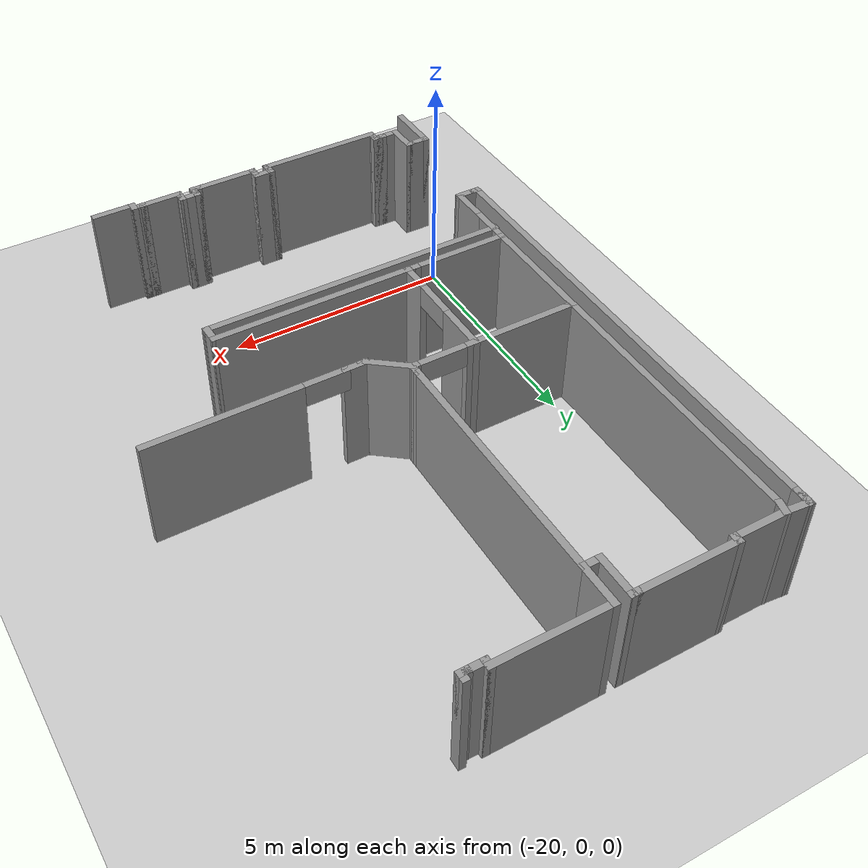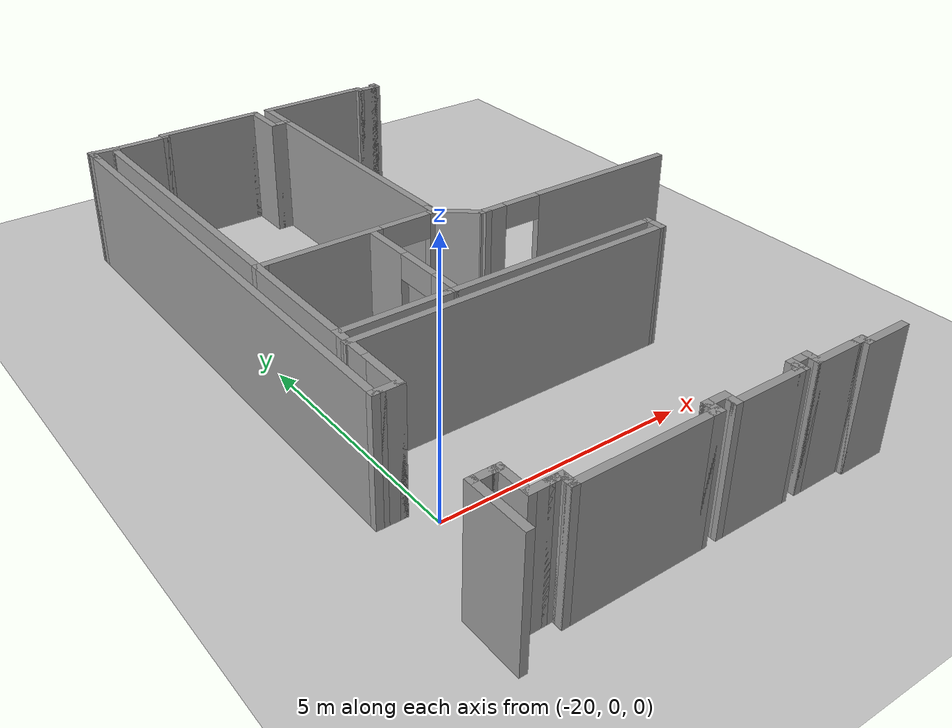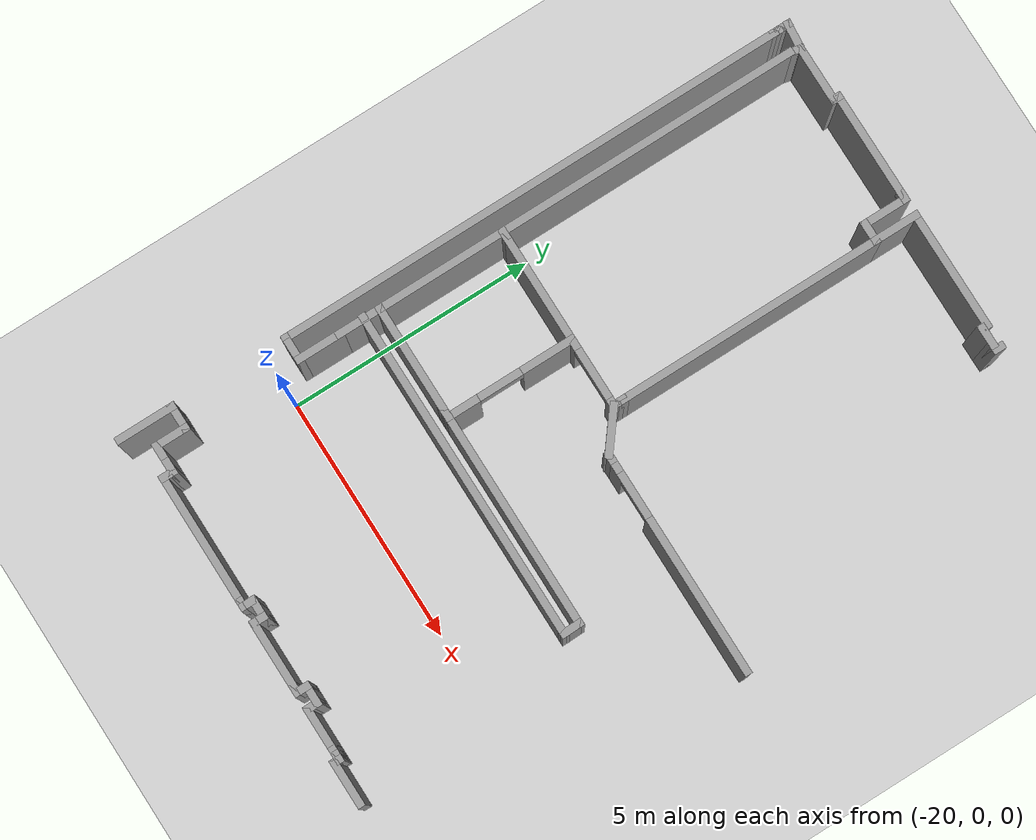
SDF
<sdf version="1.6">
 <world name="default">
  <model name="ground_plane">
   <static>1</static>
   <link name="link">
    <collision name="collision">
     <geometry><plane><normal>0 0 1</normal><size>100 100</size></plane></geometry>
     <surface><friction><ode><mu>100</mu><mu2>50</mu2></ode></friction></surface>
    </collision>
    <visual name="visual">
     <cast_shadows>0</cast_shadows>
     <geometry><plane><normal>0 0 1</normal><size>100 100</size></plane></geometry>
     <material>
      <script><uri>file://media/materials/scripts/gazebo.material</uri><name>Gazebo/Grey</name></script>
     </material>
    </visual>
   </link>
  </model>
  <model name="office_full">
   <pose>-0.417572 -0.704362 0 0 -0 0</pose>
   <link name="Wall_101">
    <collision name="Wall_101_Collision">
     <geometry><box><size>4.5 0.15 2.5</size></box></geometry>
     <pose>0 0 1.25 0 -0 0</pose>
    </collision>
    <visual name="Wall_101_Visual">
     <pose>0 0 1.25 0 -0 0</pose>
     <geometry><box><size>4.5 0.15 2.5</size></box></geometry>
     <material>
      <script><uri>file://media/materials/scripts/gazebo.material</uri><name>Gazebo/Grey</name></script>
      <ambient>1 1 1 1</ambient>
     </material>
    </visual>
    <pose>-15.4793 2.88121 0 0 -0 0</pose>
   </link>
   <link name="Wall_108">
    <collision name="Wall_108_Collision">
     <geometry><box><size>0.15 0.15 2.5</size></box></geometry>
     <pose>0 0 1.25 0 -0 0</pose>
    </collision>
    <visual name="Wall_108_Visual">
     <pose>0 0 1.25 0 -0 0</pose>
     <geometry><box><size>0.15 0.15 2.5</size></box></geometry>
     <material>
      <script><uri>file://media/materials/scripts/gazebo.material</uri><name>Gazebo/Grey</name></script>
      <ambient>1 1 1 1</ambient>
     </material>
    </visual>
    <pose>-19.9811 2.5471 0 0 -0 0</pose>
   </link>
   <link name="Wall_114">
    <collision name="Wall_114_Collision">
     <geometry><box><size>1 0.15 2.5</size></box></geometry>
     <pose>0 0 1.25 0 -0 0</pose>
    </collision>
    <visual name="Wall_114_Visual">
     <pose>0 0 1.25 0 -0 0</pose>
     <geometry><box><size>1 0.15 2.5</size></box></geometry>
     <material>
      <script><uri>file://media/materials/scripts/gazebo.material</uri><name>Gazebo/Grey</name></script>
      <ambient>1 1 1 1</ambient>
     </material>
    </visual>
    <pose>-19.9543 2.45621 0 0 0 -1.5708</pose>
   </link>
   <link name="Wall_117">
    <collision name="Wall_117_Collision">
     <geometry><box><size>6.83579 0.15 2.5</size></box></geometry>
     <pose>0 0 1.25 0 -0 0</pose>
    </collision>
    <visual name="Wall_117_Visual">
     <pose>0 0 1.25 0 -0 0</pose>
     <geometry><box><size>6.83579 0.15 2.5</size></box></geometry>
     <material>
      <script><uri>file://media/materials/scripts/gazebo.material</uri><name>Gazebo/Grey</name></script>
      <ambient>1 1 1 1</ambient>
     </material>
    </visual>
    <pose>-16.6382 2.55421 0 0 0 -3.14032</pose>
   </link>
   <link name="Wall_140">
    <collision name="Wall_140_Collision">
     <geometry><box><size>0.472867 0.15 2.5</size></box></geometry>
     <pose>0 0 1.25 0 -0 0</pose>
    </collision>
    <visual name="Wall_140_Visual">
     <pose>0 0 1.25 0 -0 0</pose>
     <geometry><box><size>0.472867 0.15 2.5</size></box></geometry>
     <material>
      <script><uri>file://media/materials/scripts/gazebo.material</uri><name>Gazebo/Grey</name></script>
      <ambient>1 1 1 1</ambient>
     </material>
    </visual>
    <pose>-13.2998 2.71984 0 0 0 -1.54281</pose>
   </link>
   <link name="Wall_143">
    <collision name="Wall_143_Collision">
     <geometry><box><size>1 0.15 2.5</size></box></geometry>
     <pose>0 0 1.25 0 -0 0</pose>
    </collision>
    <visual name="Wall_143_Visual">
     <pose>0 0 1.25 0 -0 0</pose>
     <geometry><box><size>1 0.15 2.5</size></box></geometry>
     <material>
      <script><uri>file://media/materials/scripts/gazebo.material</uri><name>Gazebo/Grey</name></script>
      <ambient>1 1 1 1</ambient>
     </material>
    </visual>
    <pose>-19.9543 1.60621 0 0 0 -1.5708</pose>
   </link>
   <link name="Wall_144">
    <collision name="Wall_144_Collision">
     <geometry><box><size>0.5 0.15 2.5</size></box></geometry>
     <pose>0 0 1.25 0 -0 0</pose>
    </collision>
    <visual name="Wall_144_Visual">
     <pose>0 0 1.25 0 -0 0</pose>
     <geometry><box><size>0.5 0.15 2.5</size></box></geometry>
     <material>
      <script><uri>file://media/materials/scripts/gazebo.material</uri><name>Gazebo/Grey</name></script>
      <ambient>1 1 1 1</ambient>
     </material>
    </visual>
    <pose>-20.1293 1.18121 0 0 -0 3.14159</pose>
   </link>
   <link name="Wall_145">
    <collision name="Wall_145_Collision">
     <geometry><box><size>0.25 0.15 2.5</size></box></geometry>
     <pose>0 0 1.25 0 -0 0</pose>
    </collision>
    <visual name="Wall_145_Visual">
     <pose>0 0 1.25 0 -0 0</pose>
     <geometry><box><size>0.25 0.15 2.5</size></box></geometry>
     <material>
      <script><uri>file://media/materials/scripts/gazebo.material</uri><name>Gazebo/Grey</name></script>
      <ambient>1 1 1 1</ambient>
     </material>
    </visual>
    <pose>-20.3543 1.18121 0 0 -0 3.14159</pose>
   </link>
   <link name="Wall_146">
    <collision name="Wall_146_Collision">
     <geometry><box><size>10.5 0.15 2.5</size></box></geometry>
     <pose>0 0 1.25 0 -0 0</pose>
    </collision>
    <visual name="Wall_146_Visual">
     <pose>0 0 1.25 0 -0 0</pose>
     <geometry><box><size>10.5 0.15 2.5</size></box></geometry>
     <material>
      <script><uri>file://media/materials/scripts/gazebo.material</uri><name>Gazebo/Grey</name></script>
      <ambient>1 1 1 1</ambient>
     </material>
    </visual>
    <pose>-20.4043 6.35621 0 0 -0 1.5708</pose>
   </link>
   <link name="Wall_147">
    <collision name="Wall_147_Collision">
     <geometry><box><size>0.25 0.15 2.5</size></box></geometry>
     <pose>0 0 1.25 0 -0 0</pose>
    </collision>
    <visual name="Wall_147_Visual">
     <pose>0 0 1.25 0 -0 0</pose>
     <geometry><box><size>0.25 0.15 2.5</size></box></geometry>
     <material>
      <script><uri>file://media/materials/scripts/gazebo.material</uri><name>Gazebo/Grey</name></script>
      <ambient>1 1 1 1</ambient>
     </material>
    </visual>
    <pose>-20.4043 11.5812 0 0 -0 1.5708</pose>
   </link>
   <link name="Wall_148">
    <collision name="Wall_148_Collision">
     <geometry><box><size>0.25 0.15 2.5</size></box></geometry>
     <pose>0 0 1.25 0 -0 0</pose>
    </collision>
    <visual name="Wall_148_Visual">
     <pose>0 0 1.25 0 -0 0</pose>
     <geometry><box><size>0.25 0.15 2.5</size></box></geometry>
     <material>
      <script><uri>file://media/materials/scripts/gazebo.material</uri><name>Gazebo/Grey</name></script>
      <ambient>1 1 1 1</ambient>
     </material>
    </visual>
    <pose>-20.4043 11.6812 0 0 -0 1.5708</pose>
   </link>
   <link name="Wall_149">
    <collision name="Wall_149_Collision">
     <geometry><box><size>0.25 0.15 2.5</size></box></geometry>
     <pose>0 0 1.25 0 -0 0</pose>
    </collision>
    <visual name="Wall_149_Visual">
     <pose>0 0 1.25 0 -0 0</pose>
     <geometry><box><size>0.25 0.15 2.5</size></box></geometry>
     <material>
      <script><uri>file://media/materials/scripts/gazebo.material</uri><name>Gazebo/Grey</name></script>
      <ambient>1 1 1 1</ambient>
     </material>
    </visual>
    <pose>-20.4043 11.6812 0 0 0 -1.5708</pose>
   </link>
   <link name="Wall_150">
    <collision name="Wall_150_Collision">
     <geometry><box><size>0.25 0.15 2.5</size></box></geometry>
     <pose>0 0 1.25 0 -0 0</pose>
    </collision>
    <visual name="Wall_150_Visual">
     <pose>0 0 1.25 0 -0 0</pose>
     <geometry><box><size>0.25 0.15 2.5</size></box></geometry>
     <material>
      <script><uri>file://media/materials/scripts/gazebo.material</uri><name>Gazebo/Grey</name></script>
      <ambient>1 1 1 1</ambient>
     </material>
    </visual>
    <pose>-20.4043 11.6812 0 0 -0 1.5708</pose>
   </link>
   <link name="Wall_151">
    <collision name="Wall_151_Collision">
     <geometry><box><size>0.25 0.15 2.5</size></box></geometry>
     <pose>0 0 1.25 0 -0 0</pose>
    </collision>
    <visual name="Wall_151_Visual">
     <pose>0 0 1.25 0 -0 0</pose>
     <geometry><box><size>0.25 0.15 2.5</size></box></geometry>
     <material>
      <script><uri>file://media/materials/scripts/gazebo.material</uri><name>Gazebo/Grey</name></script>
      <ambient>1 1 1 1</ambient>
     </material>
    </visual>
    <pose>-20.4043 11.7812 0 0 -0 1.5708</pose>
   </link>
   <link name="Wall_152">
    <collision name="Wall_152_Collision">
     <geometry><box><size>0.652494 0.15 2.5</size></box></geometry>
     <pose>0 0 1.25 0 -0 0</pose>
    </collision>
    <visual name="Wall_152_Visual">
     <pose>0 0 1.25 0 -0 0</pose>
     <geometry><box><size>0.652494 0.15 2.5</size></box></geometry>
     <material>
      <script><uri>file://media/materials/scripts/gazebo.material</uri><name>Gazebo/Grey</name></script>
      <ambient>1 1 1 1</ambient>
     </material>
    </visual>
    <pose>-20.1543 11.8062 0 0 0 -0.099669</pose>
   </link>
   <link name="Wall_154">
    <collision name="Wall_154_Collision">
     <geometry><box><size>1.25 0.15 2.5</size></box></geometry>
     <pose>0 0 1.25 0 -0 0</pose>
    </collision>
    <visual name="Wall_154_Visual">
     <pose>0 0 1.25 0 -0 0</pose>
     <geometry><box><size>1.25 0.15 2.5</size></box></geometry>
     <material>
      <script><uri>file://media/materials/scripts/gazebo.material</uri><name>Gazebo/Grey</name></script>
      <ambient>1 1 1 1</ambient>
     </material>
    </visual>
    <pose>-20.4403 -1.73121 0 0 -0 1.5708</pose>
   </link>
   <link name="Wall_155">
    <collision name="Wall_155_Collision">
     <geometry><box><size>0.5 0.15 2.5</size></box></geometry>
     <pose>0 0 1.25 0 -0 0</pose>
    </collision>
    <visual name="Wall_155_Visual">
     <pose>0 0 1.25 0 -0 0</pose>
     <geometry><box><size>0.5 0.15 2.5</size></box></geometry>
     <material>
      <script><uri>file://media/materials/scripts/gazebo.material</uri><name>Gazebo/Grey</name></script>
      <ambient>1 1 1 1</ambient>
     </material>
    </visual>
    <pose>-20.2653 -1.18121 0 0 -0 0</pose>
   </link>
   <link name="Wall_156">
    <collision name="Wall_156_Collision">
     <geometry><box><size>0.25 0.15 2.5</size></box></geometry>
     <pose>0 0 1.25 0 -0 0</pose>
    </collision>
    <visual name="Wall_156_Visual">
     <pose>0 0 1.25 0 -0 0</pose>
     <geometry><box><size>0.25 0.15 2.5</size></box></geometry>
     <material>
      <script><uri>file://media/materials/scripts/gazebo.material</uri><name>Gazebo/Grey</name></script>
      <ambient>1 1 1 1</ambient>
     </material>
    </visual>
    <pose>-20.0403 -1.18121 0 0 -0 0</pose>
   </link>
   <link name="Wall_157">
    <collision name="Wall_157_Collision">
     <geometry><box><size>0.75 0.15 2.5</size></box></geometry>
     <pose>0 0 1.25 0 -0 0</pose>
    </collision>
    <visual name="Wall_157_Visual">
     <pose>0 0 1.25 0 -0 0</pose>
     <geometry><box><size>0.75 0.15 2.5</size></box></geometry>
     <material>
      <script><uri>file://media/materials/scripts/gazebo.material</uri><name>Gazebo/Grey</name></script>
      <ambient>1 1 1 1</ambient>
     </material>
    </visual>
    <pose>-19.9903 -1.48121 0 0 0 -1.5708</pose>
   </link>
   <link name="Wall_158">
    <collision name="Wall_158_Collision">
     <geometry><box><size>0.5 0.15 2.5</size></box></geometry>
     <pose>0 0 1.25 0 -0 0</pose>
    </collision>
    <visual name="Wall_158_Visual">
     <pose>0 0 1.25 0 -0 0</pose>
     <geometry><box><size>0.5 0.15 2.5</size></box></geometry>
     <material>
      <script><uri>file://media/materials/scripts/gazebo.material</uri><name>Gazebo/Grey</name></script>
      <ambient>1 1 1 1</ambient>
     </material>
    </visual>
    <pose>-19.8153 -1.78121 0 0 -0 0</pose>
   </link>
   <link name="Wall_159">
    <collision name="Wall_159_Collision">
     <geometry><box><size>0.25 0.15 2.5</size></box></geometry>
     <pose>0 0 1.25 0 -0 0</pose>
    </collision>
    <visual name="Wall_159_Visual">
     <pose>0 0 1.25 0 -0 0</pose>
     <geometry><box><size>0.25 0.15 2.5</size></box></geometry>
     <material>
      <script><uri>file://media/materials/scripts/gazebo.material</uri><name>Gazebo/Grey</name></script>
      <ambient>1 1 1 1</ambient>
     </material>
    </visual>
    <pose>-19.5903 -1.78121 0 0 -0 0</pose>
   </link>
   <link name="Wall_160">
    <collision name="Wall_160_Collision">
     <geometry><box><size>0.25 0.15 2.5</size></box></geometry>
     <pose>0 0 1.25 0 -0 0</pose>
    </collision>
    <visual name="Wall_160_Visual">
     <pose>0 0 1.25 0 -0 0</pose>
     <geometry><box><size>0.25 0.15 2.5</size></box></geometry>
     <material>
      <script><uri>file://media/materials/scripts/gazebo.material</uri><name>Gazebo/Grey</name></script>
      <ambient>1 1 1 1</ambient>
     </material>
    </visual>
    <pose>-19.4903 -1.78121 0 0 -0 0</pose>
   </link>
   <link name="Wall_161">
    <collision name="Wall_161_Collision">
     <geometry><box><size>0.25 0.15 2.5</size></box></geometry>
     <pose>0 0 1.25 0 -0 0</pose>
    </collision>
    <visual name="Wall_161_Visual">
     <pose>0 0 1.25 0 -0 0</pose>
     <geometry><box><size>0.25 0.15 2.5</size></box></geometry>
     <material>
      <script><uri>file://media/materials/scripts/gazebo.material</uri><name>Gazebo/Grey</name></script>
      <ambient>1 1 1 1</ambient>
     </material>
    </visual>
    <pose>-19.4403 -1.83121 0 0 0 -1.5708</pose>
   </link>
   <link name="Wall_162">
    <collision name="Wall_162_Collision">
     <geometry><box><size>0.25 0.15 2.5</size></box></geometry>
     <pose>0 0 1.25 0 -0 0</pose>
    </collision>
    <visual name="Wall_162_Visual">
     <pose>0 0 1.25 0 -0 0</pose>
     <geometry><box><size>0.25 0.15 2.5</size></box></geometry>
     <material>
      <script><uri>file://media/materials/scripts/gazebo.material</uri><name>Gazebo/Grey</name></script>
      <ambient>1 1 1 1</ambient>
     </material>
    </visual>
    <pose>-19.4403 -1.93121 0 0 0 -1.5708</pose>
   </link>
   <link name="Wall_163">
    <collision name="Wall_163_Collision">
     <geometry><box><size>2.75 0.15 2.5</size></box></geometry>
     <pose>0 0 1.25 0 -0 0</pose>
    </collision>
    <visual name="Wall_163_Visual">
     <pose>0 0 1.25 0 -0 0</pose>
     <geometry><box><size>2.75 0.15 2.5</size></box></geometry>
     <material>
      <script><uri>file://media/materials/scripts/gazebo.material</uri><name>Gazebo/Grey</name></script>
      <ambient>1 1 1 1</ambient>
     </material>
    </visual>
    <pose>-18.1403 -1.98121 0 0 -0 0</pose>
   </link>
   <link name="Wall_164">
    <collision name="Wall_164_Collision">
     <geometry><box><size>0.25 0.15 2.5</size></box></geometry>
     <pose>0 0 1.25 0 -0 0</pose>
    </collision>
    <visual name="Wall_164_Visual">
     <pose>0 0 1.25 0 -0 0</pose>
     <geometry><box><size>0.25 0.15 2.5</size></box></geometry>
     <material>
      <script><uri>file://media/materials/scripts/gazebo.material</uri><name>Gazebo/Grey</name></script>
      <ambient>1 1 1 1</ambient>
     </material>
    </visual>
    <pose>-16.7903 -1.98121 0 0 -0 0</pose>
   </link>
   <link name="Wall_165">
    <collision name="Wall_165_Collision">
     <geometry><box><size>0.25 0.15 2.5</size></box></geometry>
     <pose>0 0 1.25 0 -0 0</pose>
    </collision>
    <visual name="Wall_165_Visual">
     <pose>0 0 1.25 0 -0 0</pose>
     <geometry><box><size>0.25 0.15 2.5</size></box></geometry>
     <material>
      <script><uri>file://media/materials/scripts/gazebo.material</uri><name>Gazebo/Grey</name></script>
      <ambient>1 1 1 1</ambient>
     </material>
    </visual>
    <pose>-16.7403 -1.93121 0 0 -0 1.5708</pose>
   </link>
   <link name="Wall_166">
    <collision name="Wall_166_Collision">
     <geometry><box><size>0.25 0.15 2.5</size></box></geometry>
     <pose>0 0 1.25 0 -0 0</pose>
    </collision>
    <visual name="Wall_166_Visual">
     <pose>0 0 1.25 0 -0 0</pose>
     <geometry><box><size>0.25 0.15 2.5</size></box></geometry>
     <material>
      <script><uri>file://media/materials/scripts/gazebo.material</uri><name>Gazebo/Grey</name></script>
      <ambient>1 1 1 1</ambient>
     </material>
    </visual>
    <pose>-16.7403 -1.83121 0 0 -0 1.5708</pose>
   </link>
   <link name="Wall_167">
    <collision name="Wall_167_Collision">
     <geometry><box><size>0.5 0.15 2.5</size></box></geometry>
     <pose>0 0 1.25 0 -0 0</pose>
    </collision>
    <visual name="Wall_167_Visual">
     <pose>0 0 1.25 0 -0 0</pose>
     <geometry><box><size>0.5 0.15 2.5</size></box></geometry>
     <material>
      <script><uri>file://media/materials/scripts/gazebo.material</uri><name>Gazebo/Grey</name></script>
      <ambient>1 1 1 1</ambient>
     </material>
    </visual>
    <pose>-16.5653 -1.78121 0 0 -0 0</pose>
   </link>
   <link name="Wall_168">
    <collision name="Wall_168_Collision">
     <geometry><box><size>0.25 0.15 2.5</size></box></geometry>
     <pose>0 0 1.25 0 -0 0</pose>
    </collision>
    <visual name="Wall_168_Visual">
     <pose>0 0 1.25 0 -0 0</pose>
     <geometry><box><size>0.25 0.15 2.5</size></box></geometry>
     <material>
      <script><uri>file://media/materials/scripts/gazebo.material</uri><name>Gazebo/Grey</name></script>
      <ambient>1 1 1 1</ambient>
     </material>
    </visual>
    <pose>-16.3903 -1.83121 0 0 0 -1.5708</pose>
   </link>
   <link name="Wall_169">
    <collision name="Wall_169_Collision">
     <geometry><box><size>0.25 0.15 2.5</size></box></geometry>
     <pose>0 0 1.25 0 -0 0</pose>
    </collision>
    <visual name="Wall_169_Visual">
     <pose>0 0 1.25 0 -0 0</pose>
     <geometry><box><size>0.25 0.15 2.5</size></box></geometry>
     <material>
      <script><uri>file://media/materials/scripts/gazebo.material</uri><name>Gazebo/Grey</name></script>
      <ambient>1 1 1 1</ambient>
     </material>
    </visual>
    <pose>-16.3903 -1.93121 0 0 0 -1.5708</pose>
   </link>
   <link name="Wall_170">
    <collision name="Wall_170_Collision">
     <geometry><box><size>1.5 0.15 2.5</size></box></geometry>
     <pose>0 0 1.25 0 -0 0</pose>
    </collision>
    <visual name="Wall_170_Visual">
     <pose>0 0 1.25 0 -0 0</pose>
     <geometry><box><size>1.5 0.15 2.5</size></box></geometry>
     <material>
      <script><uri>file://media/materials/scripts/gazebo.material</uri><name>Gazebo/Grey</name></script>
      <ambient>1 1 1 1</ambient>
     </material>
    </visual>
    <pose>-15.7153 -1.98121 0 0 -0 0</pose>
   </link>
   <link name="Wall_171">
    <collision name="Wall_171_Collision">
     <geometry><box><size>0.25 0.15 2.5</size></box></geometry>
     <pose>0 0 1.25 0 -0 0</pose>
    </collision>
    <visual name="Wall_171_Visual">
     <pose>0 0 1.25 0 -0 0</pose>
     <geometry><box><size>0.25 0.15 2.5</size></box></geometry>
     <material>
      <script><uri>file://media/materials/scripts/gazebo.material</uri><name>Gazebo/Grey</name></script>
      <ambient>1 1 1 1</ambient>
     </material>
    </visual>
    <pose>-14.9903 -1.98121 0 0 -0 0</pose>
   </link>
   <link name="Wall_172">
    <collision name="Wall_172_Collision">
     <geometry><box><size>0.25 0.15 2.5</size></box></geometry>
     <pose>0 0 1.25 0 -0 0</pose>
    </collision>
    <visual name="Wall_172_Visual">
     <pose>0 0 1.25 0 -0 0</pose>
     <geometry><box><size>0.25 0.15 2.5</size></box></geometry>
     <material>
      <script><uri>file://media/materials/scripts/gazebo.material</uri><name>Gazebo/Grey</name></script>
      <ambient>1 1 1 1</ambient>
     </material>
    </visual>
    <pose>-14.9403 -1.93121 0 0 -0 1.5708</pose>
   </link>
   <link name="Wall_173">
    <collision name="Wall_173_Collision">
     <geometry><box><size>0.25 0.15 2.5</size></box></geometry>
     <pose>0 0 1.25 0 -0 0</pose>
    </collision>
    <visual name="Wall_173_Visual">
     <pose>0 0 1.25 0 -0 0</pose>
     <geometry><box><size>0.25 0.15 2.5</size></box></geometry>
     <material>
      <script><uri>file://media/materials/scripts/gazebo.material</uri><name>Gazebo/Grey</name></script>
      <ambient>1 1 1 1</ambient>
     </material>
    </visual>
    <pose>-14.9403 -1.83121 0 0 -0 1.5708</pose>
   </link>
   <link name="Wall_174">
    <collision name="Wall_174_Collision">
     <geometry><box><size>0.5 0.15 2.5</size></box></geometry>
     <pose>0 0 1.25 0 -0 0</pose>
    </collision>
    <visual name="Wall_174_Visual">
     <pose>0 0 1.25 0 -0 0</pose>
     <geometry><box><size>0.5 0.15 2.5</size></box></geometry>
     <material>
      <script><uri>file://media/materials/scripts/gazebo.material</uri><name>Gazebo/Grey</name></script>
      <ambient>1 1 1 1</ambient>
     </material>
    </visual>
    <pose>-14.7653 -1.78121 0 0 -0 0</pose>
   </link>
   <link name="Wall_175">
    <collision name="Wall_175_Collision">
     <geometry><box><size>0.25 0.15 2.5</size></box></geometry>
     <pose>0 0 1.25 0 -0 0</pose>
    </collision>
    <visual name="Wall_175_Visual">
     <pose>0 0 1.25 0 -0 0</pose>
     <geometry><box><size>0.25 0.15 2.5</size></box></geometry>
     <material>
      <script><uri>file://media/materials/scripts/gazebo.material</uri><name>Gazebo/Grey</name></script>
      <ambient>1 1 1 1</ambient>
     </material>
    </visual>
    <pose>-14.5903 -1.83121 0 0 0 -1.5708</pose>
   </link>
   <link name="Wall_176">
    <collision name="Wall_176_Collision">
     <geometry><box><size>0.25 0.15 2.5</size></box></geometry>
     <pose>0 0 1.25 0 -0 0</pose>
    </collision>
    <visual name="Wall_176_Visual">
     <pose>0 0 1.25 0 -0 0</pose>
     <geometry><box><size>0.25 0.15 2.5</size></box></geometry>
     <material>
      <script><uri>file://media/materials/scripts/gazebo.material</uri><name>Gazebo/Grey</name></script>
      <ambient>1 1 1 1</ambient>
     </material>
    </visual>
    <pose>-14.5903 -1.93121 0 0 0 -1.5708</pose>
   </link>
   <link name="Wall_177">
    <collision name="Wall_177_Collision">
     <geometry><box><size>1 0.15 2.5</size></box></geometry>
     <pose>0 0 1.25 0 -0 0</pose>
    </collision>
    <visual name="Wall_177_Visual">
     <pose>0 0 1.25 0 -0 0</pose>
     <geometry><box><size>1 0.15 2.5</size></box></geometry>
     <material>
      <script><uri>file://media/materials/scripts/gazebo.material</uri><name>Gazebo/Grey</name></script>
      <ambient>1 1 1 1</ambient>
     </material>
    </visual>
    <pose>-14.1653 -1.98121 0 0 -0 0</pose>
   </link>
   <link name="Wall_178">
    <collision name="Wall_178_Collision">
     <geometry><box><size>0.25 0.15 2.5</size></box></geometry>
     <pose>0 0 1.25 0 -0 0</pose>
    </collision>
    <visual name="Wall_178_Visual">
     <pose>0 0 1.25 0 -0 0</pose>
     <geometry><box><size>0.25 0.15 2.5</size></box></geometry>
     <material>
      <script><uri>file://media/materials/scripts/gazebo.material</uri><name>Gazebo/Grey</name></script>
      <ambient>1 1 1 1</ambient>
     </material>
    </visual>
    <pose>-13.6903 -1.98121 0 0 -0 0</pose>
   </link>
   <link name="Wall_179">
    <collision name="Wall_179_Collision">
     <geometry><box><size>0.25 0.15 2.5</size></box></geometry>
     <pose>0 0 1.25 0 -0 0</pose>
    </collision>
    <visual name="Wall_179_Visual">
     <pose>0 0 1.25 0 -0 0</pose>
     <geometry><box><size>0.25 0.15 2.5</size></box></geometry>
     <material>
      <script><uri>file://media/materials/scripts/gazebo.material</uri><name>Gazebo/Grey</name></script>
      <ambient>1 1 1 1</ambient>
     </material>
    </visual>
    <pose>-13.5903 -1.98121 0 0 -0 0</pose>
   </link>
   <link name="Wall_180">
    <collision name="Wall_180_Collision">
     <geometry><box><size>0.25 0.15 2.5</size></box></geometry>
     <pose>0 0 1.25 0 -0 0</pose>
    </collision>
    <visual name="Wall_180_Visual">
     <pose>0 0 1.25 0 -0 0</pose>
     <geometry><box><size>0.25 0.15 2.5</size></box></geometry>
     <material>
      <script><uri>file://media/materials/scripts/gazebo.material</uri><name>Gazebo/Grey</name></script>
      <ambient>1 1 1 1</ambient>
     </material>
    </visual>
    <pose>-13.5403 -2.03121 0 0 0 -1.5708</pose>
   </link>
   <link name="Wall_181">
    <collision name="Wall_181_Collision">
     <geometry><box><size>1 0.15 2.5</size></box></geometry>
     <pose>0 0 1.25 0 -0 0</pose>
    </collision>
    <visual name="Wall_181_Visual">
     <pose>0 0 1.25 0 -0 0</pose>
     <geometry><box><size>1 0.15 2.5</size></box></geometry>
     <material>
      <script><uri>file://media/materials/scripts/gazebo.material</uri><name>Gazebo/Grey</name></script>
      <ambient>1 1 1 1</ambient>
     </material>
    </visual>
    <pose>-13.1153 -2.08121 0 0 -0 0</pose>
   </link>
   <link name="Wall_37">
    <collision name="Wall_37_Collision">
     <geometry><box><size>1.25 0.15 2.5</size></box></geometry>
     <pose>0 0 1.25 0 -0 0</pose>
    </collision>
    <visual name="Wall_37_Visual">
     <pose>0 0 1.25 0 -0 0</pose>
     <geometry><box><size>1.25 0.15 2.5</size></box></geometry>
     <material>
      <script><uri>file://media/materials/scripts/gazebo.material</uri><name>Gazebo/Grey</name></script>
      <ambient>1 1 1 1</ambient>
     </material>
    </visual>
    <pose>-19.3543 11.7812 0 0 -0 0</pose>
   </link>
   <link name="Wall_38">
    <collision name="Wall_38_Collision">
     <geometry><box><size>0.25 0.15 2.5</size></box></geometry>
     <pose>0 0 1.25 0 -0 0</pose>
    </collision>
    <visual name="Wall_38_Visual">
     <pose>0 0 1.25 0 -0 0</pose>
     <geometry><box><size>0.25 0.15 2.5</size></box></geometry>
     <material>
      <script><uri>file://media/materials/scripts/gazebo.material</uri><name>Gazebo/Grey</name></script>
      <ambient>1 1 1 1</ambient>
     </material>
    </visual>
    <pose>-18.8043 11.8312 0 0 -0 1.5708</pose>
   </link>
   <link name="Wall_39">
    <collision name="Wall_39_Collision">
     <geometry><box><size>2.25 0.15 2.5</size></box></geometry>
     <pose>0 0 1.25 0 -0 0</pose>
    </collision>
    <visual name="Wall_39_Visual">
     <pose>0 0 1.25 0 -0 0</pose>
     <geometry><box><size>2.25 0.15 2.5</size></box></geometry>
     <material>
      <script><uri>file://media/materials/scripts/gazebo.material</uri><name>Gazebo/Grey</name></script>
      <ambient>1 1 1 1</ambient>
     </material>
    </visual>
    <pose>-17.7543 11.8812 0 0 -0 0</pose>
   </link>
   <link name="Wall_40">
    <collision name="Wall_40_Collision">
     <geometry><box><size>0.25 0.15 2.5</size></box></geometry>
     <pose>0 0 1.25 0 -0 0</pose>
    </collision>
    <visual name="Wall_40_Visual">
     <pose>0 0 1.25 0 -0 0</pose>
     <geometry><box><size>0.25 0.15 2.5</size></box></geometry>
     <material>
      <script><uri>file://media/materials/scripts/gazebo.material</uri><name>Gazebo/Grey</name></script>
      <ambient>1 1 1 1</ambient>
     </material>
    </visual>
    <pose>-16.6543 11.8812 0 0 -0 0</pose>
   </link>
   <link name="Wall_41">
    <collision name="Wall_41_Collision">
     <geometry><box><size>1 0.15 2.5</size></box></geometry>
     <pose>0 0 1.25 0 -0 0</pose>
    </collision>
    <visual name="Wall_41_Visual">
     <pose>0 0 1.25 0 -0 0</pose>
     <geometry><box><size>1 0.15 2.5</size></box></geometry>
     <material>
      <script><uri>file://media/materials/scripts/gazebo.material</uri><name>Gazebo/Grey</name></script>
      <ambient>1 1 1 1</ambient>
     </material>
    </visual>
    <pose>-16.6043 11.4562 0 0 0 -1.5708</pose>
   </link>
   <link name="Wall_42">
    <collision name="Wall_42_Collision">
     <geometry><box><size>0.5 0.15 2.5</size></box></geometry>
     <pose>0 0 1.25 0 -0 0</pose>
    </collision>
    <visual name="Wall_42_Visual">
     <pose>0 0 1.25 0 -0 0</pose>
     <geometry><box><size>0.5 0.15 2.5</size></box></geometry>
     <material>
      <script><uri>file://media/materials/scripts/gazebo.material</uri><name>Gazebo/Grey</name></script>
      <ambient>1 1 1 1</ambient>
     </material>
    </visual>
    <pose>-16.4293 11.0312 0 0 -0 0</pose>
   </link>
   <link name="Wall_43">
    <collision name="Wall_43_Collision">
     <geometry><box><size>5.5 0.15 2.5</size></box></geometry>
     <pose>0 0 1.25 0 -0 0</pose>
    </collision>
    <visual name="Wall_43_Visual">
     <pose>0 0 1.25 0 -0 0</pose>
     <geometry><box><size>5.5 0.15 2.5</size></box></geometry>
     <material>
      <script><uri>file://media/materials/scripts/gazebo.material</uri><name>Gazebo/Grey</name></script>
      <ambient>1 1 1 1</ambient>
     </material>
    </visual>
    <pose>-16.2543 8.35621 0 0 0 -1.5708</pose>
   </link>
   <link name="Wall_44">
    <collision name="Wall_44_Collision">
     <geometry><box><size>0.25 0.15 2.5</size></box></geometry>
     <pose>0 0 1.25 0 -0 0</pose>
    </collision>
    <visual name="Wall_44_Visual">
     <pose>0 0 1.25 0 -0 0</pose>
     <geometry><box><size>0.25 0.15 2.5</size></box></geometry>
     <material>
      <script><uri>file://media/materials/scripts/gazebo.material</uri><name>Gazebo/Grey</name></script>
      <ambient>1 1 1 1</ambient>
     </material>
    </visual>
    <pose>-16.2543 5.63121 0 0 0 -1.5708</pose>
   </link>
   <link name="Wall_45">
    <collision name="Wall_45_Collision">
     <geometry><box><size>0.25 0.15 2.5</size></box></geometry>
     <pose>0 0 1.25 0 -0 0</pose>
    </collision>
    <visual name="Wall_45_Visual">
     <pose>0 0 1.25 0 -0 0</pose>
     <geometry><box><size>0.25 0.15 2.5</size></box></geometry>
     <material>
      <script><uri>file://media/materials/scripts/gazebo.material</uri><name>Gazebo/Grey</name></script>
      <ambient>1 1 1 1</ambient>
     </material>
    </visual>
    <pose>-16.2543 5.53121 0 0 0 -1.5708</pose>
   </link>
   <link name="Wall_46">
    <pose>-18.0543 5.48121 0 0 -0 3.14159</pose>
    <visual name="Wall_46_Visual_0">
     <pose>-1.76403 0 1.25 0 -0 0</pose>
     <geometry><box><size>0.221946 0.15 2.5</size></box></geometry>
     <material>
      <script><uri>file://media/materials/scripts/gazebo.material</uri><name>Gazebo/Grey</name></script>
      <ambient>1 1 1 1</ambient>
     </material>
    </visual>
    <collision name="Wall_46_Collision_0">
     <geometry><box><size>0.221946 0.15 2.5</size></box></geometry>
     <pose>-1.76403 0 1.25 0 -0 0</pose>
    </collision>
    <visual name="Wall_46_Visual_1">
     <pose>0.633064 0 1.25 0 -0 0</pose>
     <geometry><box><size>2.48387 0.15 2.5</size></box></geometry>
     <material>
      <script><uri>file://media/materials/scripts/gazebo.material</uri><name>Gazebo/Grey</name></script>
      <ambient>1 1 1 1</ambient>
     </material>
    </visual>
    <collision name="Wall_46_Collision_1">
     <geometry><box><size>2.48387 0.15 2.5</size></box></geometry>
     <pose>0.633064 0 1.25 0 -0 0</pose>
    </collision>
    <visual name="Wall_46_Visual_2">
     <pose>-1.13096 0 2.25 0 -0 0</pose>
     <geometry><box><size>1.04418 0.15 0.5</size></box></geometry>
     <material>
      <script><uri>file://media/materials/scripts/gazebo.material</uri><name>Gazebo/Grey</name></script>
      <ambient>1 1 1 1</ambient>
     </material>
    </visual>
    <collision name="Wall_46_Collision_2">
     <geometry><box><size>1.04418 0.15 0.5</size></box></geometry>
     <pose>-1.13096 0 2.25 0 -0 0</pose>
    </collision>
   </link>
   <link name="Wall_47">
    <collision name="Wall_47_Collision">
     <geometry><box><size>0.25 0.15 2.5</size></box></geometry>
     <pose>0 0 1.25 0 -0 0</pose>
    </collision>
    <visual name="Wall_47_Visual">
     <pose>0 0 1.25 0 -0 0</pose>
     <geometry><box><size>0.25 0.15 2.5</size></box></geometry>
     <material>
      <script><uri>file://media/materials/scripts/gazebo.material</uri><name>Gazebo/Grey</name></script>
      <ambient>1 1 1 1</ambient>
     </material>
    </visual>
    <pose>-19.9043 5.48121 0 0 -0 3.14159</pose>
   </link>
   <link name="Wall_48">
    <collision name="Wall_48_Collision">
     <geometry><box><size>6.25 0.15 2.5</size></box></geometry>
     <pose>0 0 1.25 0 -0 0</pose>
    </collision>
    <visual name="Wall_48_Visual">
     <pose>0 0 1.25 0 -0 0</pose>
     <geometry><box><size>6.25 0.15 2.5</size></box></geometry>
     <material>
      <script><uri>file://media/materials/scripts/gazebo.material</uri><name>Gazebo/Grey</name></script>
      <ambient>1 1 1 1</ambient>
     </material>
    </visual>
    <pose>-19.9543 8.53121 0 0 -0 1.5708</pose>
   </link>
   <link name="Wall_51">
    <collision name="Wall_51_Collision">
     <geometry><box><size>0.356155 0.15 2.5</size></box></geometry>
     <pose>0 0 1.25 0 -0 0</pose>
    </collision>
    <visual name="Wall_51_Visual">
     <pose>0 0 1.25 0 -0 0</pose>
     <geometry><box><size>0.356155 0.15 2.5</size></box></geometry>
     <material>
      <script><uri>file://media/materials/scripts/gazebo.material</uri><name>Gazebo/Grey</name></script>
      <ambient>1 1 1 1</ambient>
     </material>
    </visual>
    <pose>-19.9293 11.6812 0 0 -0 1.32582</pose>
   </link>
   <link name="Wall_53">
    <collision name="Wall_53_Collision">
     <geometry><box><size>1 0.15 2.5</size></box></geometry>
     <pose>0 0 1.25 0 -0 0</pose>
    </collision>
    <visual name="Wall_53_Visual">
     <pose>0 0 1.25 0 -0 0</pose>
     <geometry><box><size>1 0.15 2.5</size></box></geometry>
     <material>
      <script><uri>file://media/materials/scripts/gazebo.material</uri><name>Gazebo/Grey</name></script>
      <ambient>1 1 1 1</ambient>
     </material>
    </visual>
    <pose>-16.2543 11.4562 0 0 -0 1.5708</pose>
   </link>
   <link name="Wall_54">
    <collision name="Wall_54_Collision">
     <geometry><box><size>2.5 0.15 2.5</size></box></geometry>
     <pose>0 0 1.25 0 -0 0</pose>
    </collision>
    <visual name="Wall_54_Visual">
     <pose>0 0 1.25 0 -0 0</pose>
     <geometry><box><size>2.5 0.15 2.5</size></box></geometry>
     <material>
      <script><uri>file://media/materials/scripts/gazebo.material</uri><name>Gazebo/Grey</name></script>
      <ambient>1 1 1 1</ambient>
     </material>
    </visual>
    <pose>-15.0793 11.8812 0 0 -0 0</pose>
   </link>
   <link name="Wall_55">
    <collision name="Wall_55_Collision">
     <geometry><box><size>0.25 0.15 2.5</size></box></geometry>
     <pose>0 0 1.25 0 -0 0</pose>
    </collision>
    <visual name="Wall_55_Visual">
     <pose>0 0 1.25 0 -0 0</pose>
     <geometry><box><size>0.25 0.15 2.5</size></box></geometry>
     <material>
      <script><uri>file://media/materials/scripts/gazebo.material</uri><name>Gazebo/Grey</name></script>
      <ambient>1 1 1 1</ambient>
     </material>
    </visual>
    <pose>-13.9043 11.8312 0 0 0 -1.5708</pose>
   </link>
   <link name="Wall_56">
    <collision name="Wall_56_Collision">
     <geometry><box><size>0.5 0.15 2.5</size></box></geometry>
     <pose>0 0 1.25 0 -0 0</pose>
    </collision>
    <visual name="Wall_56_Visual">
     <pose>0 0 1.25 0 -0 0</pose>
     <geometry><box><size>0.5 0.15 2.5</size></box></geometry>
     <material>
      <script><uri>file://media/materials/scripts/gazebo.material</uri><name>Gazebo/Grey</name></script>
      <ambient>1 1 1 1</ambient>
     </material>
    </visual>
    <pose>-13.7293 11.7812 0 0 -0 0</pose>
   </link>
   <link name="Wall_57">
    <collision name="Wall_57_Collision">
     <geometry><box><size>0.25 0.15 2.5</size></box></geometry>
     <pose>0 0 1.25 0 -0 0</pose>
    </collision>
    <visual name="Wall_57_Visual">
     <pose>0 0 1.25 0 -0 0</pose>
     <geometry><box><size>0.25 0.15 2.5</size></box></geometry>
     <material>
      <script><uri>file://media/materials/scripts/gazebo.material</uri><name>Gazebo/Grey</name></script>
      <ambient>1 1 1 1</ambient>
     </material>
    </visual>
    <pose>-13.5043 11.7812 0 0 -0 0</pose>
   </link>
   <link name="Wall_58">
    <collision name="Wall_58_Collision">
     <geometry><box><size>0.25 0.15 2.5</size></box></geometry>
     <pose>0 0 1.25 0 -0 0</pose>
    </collision>
    <visual name="Wall_58_Visual">
     <pose>0 0 1.25 0 -0 0</pose>
     <geometry><box><size>0.25 0.15 2.5</size></box></geometry>
     <material>
      <script><uri>file://media/materials/scripts/gazebo.material</uri><name>Gazebo/Grey</name></script>
      <ambient>1 1 1 1</ambient>
     </material>
    </visual>
    <pose>-13.4543 11.8312 0 0 -0 1.5708</pose>
   </link>
   <link name="Wall_63">
    <pose>-13.0543 4.93121 0 0 -0 3.14159</pose>
    <visual name="Wall_63_Visual_0">
     <pose>-0.477169 0 1.25 0 -0 0</pose>
     <geometry><box><size>3.29566 0.15 2.5</size></box></geometry>
     <material>
      <script><uri>file://media/materials/scripts/gazebo.material</uri><name>Gazebo/Grey</name></script>
      <ambient>1 1 1 1</ambient>
     </material>
    </visual>
    <collision name="Wall_63_Collision_0">
     <geometry><box><size>3.29566 0.15 2.5</size></box></geometry>
     <pose>-0.477169 0 1.25 0 -0 0</pose>
    </collision>
    <visual name="Wall_63_Visual_1">
     <pose>1.64783 0 2.25 0 -0 0</pose>
     <geometry><box><size>0.954338 0.15 0.5</size></box></geometry>
     <material>
      <script><uri>file://media/materials/scripts/gazebo.material</uri><name>Gazebo/Grey</name></script>
      <ambient>1 1 1 1</ambient>
     </material>
    </visual>
    <collision name="Wall_63_Collision_1">
     <geometry><box><size>0.954338 0.15 0.5</size></box></geometry>
     <pose>1.64783 0 2.25 0 -0 0</pose>
    </collision>
   </link>
   <link name="Wall_64">
    <collision name="Wall_64_Collision">
     <geometry><box><size>0.5 0.15 2.5</size></box></geometry>
     <pose>0 0 1.25 0 -0 0</pose>
    </collision>
    <visual name="Wall_64_Visual">
     <pose>0 0 1.25 0 -0 0</pose>
     <geometry><box><size>0.5 0.15 2.5</size></box></geometry>
     <material>
      <script><uri>file://media/materials/scripts/gazebo.material</uri><name>Gazebo/Grey</name></script>
      <ambient>1 1 1 1</ambient>
     </material>
    </visual>
    <pose>-15.2793 4.93121 0 0 -0 3.14159</pose>
   </link>
   <link name="Wall_65">
    <collision name="Wall_65_Collision">
     <geometry><box><size>0.25 0.15 2.5</size></box></geometry>
     <pose>0 0 1.25 0 -0 0</pose>
    </collision>
    <visual name="Wall_65_Visual">
     <pose>0 0 1.25 0 -0 0</pose>
     <geometry><box><size>0.25 0.15 2.5</size></box></geometry>
     <material>
      <script><uri>file://media/materials/scripts/gazebo.material</uri><name>Gazebo/Grey</name></script>
      <ambient>1 1 1 1</ambient>
     </material>
    </visual>
    <pose>-15.5043 4.93121 0 0 -0 3.14159</pose>
   </link>
   <link name="Wall_66">
    <collision name="Wall_66_Collision">
     <geometry><box><size>1.04022 0.15 2.5</size></box></geometry>
     <pose>0 0 1.25 0 -0 0</pose>
    </collision>
    <visual name="Wall_66_Visual">
     <pose>0 0 1.25 0 -0 0</pose>
     <geometry><box><size>1.04022 0.15 2.5</size></box></geometry>
     <material>
      <script><uri>file://media/materials/scripts/gazebo.material</uri><name>Gazebo/Grey</name></script>
      <ambient>1 1 1 1</ambient>
     </material>
    </visual>
    <pose>-15.9043 5.20621 0 0 -0 2.47562</pose>
   </link>
   <link name="Wall_95">
    <collision name="Wall_95_Collision">
     <geometry><box><size>2.75 0.15 2.5</size></box></geometry>
     <pose>0 0 1.25 0 -0 0</pose>
    </collision>
    <visual name="Wall_95_Visual">
     <pose>0 0 1.25 0 -0 0</pose>
     <geometry><box><size>2.75 0.15 2.5</size></box></geometry>
     <material>
      <script><uri>file://media/materials/scripts/gazebo.material</uri><name>Gazebo/Grey</name></script>
      <ambient>1 1 1 1</ambient>
     </material>
    </visual>
    <pose>-19.9543 4.18121 0 0 0 -1.5708</pose>
   </link>
   <link name="Wall_96">
    <collision name="Wall_96_Collision">
     <geometry><box><size>2.25 0.15 2.5</size></box></geometry>
     <pose>0 0 1.25 0 -0 0</pose>
    </collision>
    <visual name="Wall_96_Visual">
     <pose>0 0 1.25 0 -0 0</pose>
     <geometry><box><size>2.25 0.15 2.5</size></box></geometry>
     <material>
      <script><uri>file://media/materials/scripts/gazebo.material</uri><name>Gazebo/Grey</name></script>
      <ambient>1 1 1 1</ambient>
     </material>
    </visual>
    <pose>-18.9043 2.88121 0 0 -0 0</pose>
   </link>
   <link name="Wall_97">
    <collision name="Wall_97_Collision">
     <geometry><box><size>0.25 0.15 2.5</size></box></geometry>
     <pose>0 0 1.25 0 -0 0</pose>
    </collision>
    <visual name="Wall_97_Visual">
     <pose>0 0 1.25 0 -0 0</pose>
     <geometry><box><size>0.25 0.15 2.5</size></box></geometry>
     <material>
      <script><uri>file://media/materials/scripts/gazebo.material</uri><name>Gazebo/Grey</name></script>
      <ambient>1 1 1 1</ambient>
     </material>
    </visual>
    <pose>-17.8043 2.88121 0 0 -0 0</pose>
   </link>
   <link name="Wall_98">
    <collision name="Wall_98_Collision">
     <geometry><box><size>0.25 0.15 2.5</size></box></geometry>
     <pose>0 0 1.25 0 -0 0</pose>
    </collision>
    <visual name="Wall_98_Visual">
     <pose>0 0 1.25 0 -0 0</pose>
     <geometry><box><size>0.25 0.15 2.5</size></box></geometry>
     <material>
      <script><uri>file://media/materials/scripts/gazebo.material</uri><name>Gazebo/Grey</name></script>
      <ambient>1 1 1 1</ambient>
     </material>
    </visual>
    <pose>-17.7043 2.88121 0 0 -0 0</pose>
   </link>
   <link name="Wall_99">
    <pose>-17.6543 4.18121 0 0 -0 1.5708</pose>
    <visual name="Wall_99_Visual_0">
     <pose>-1.02027 0 1.25 0 -0 0</pose>
     <geometry><box><size>0.709461 0.15 2.5</size></box></geometry>
     <material>
      <script><uri>file://media/materials/scripts/gazebo.material</uri><name>Gazebo/Grey</name></script>
      <ambient>1 1 1 1</ambient>
     </material>
    </visual>
    <collision name="Wall_99_Collision_0">
     <geometry><box><size>0.709461 0.15 2.5</size></box></geometry>
     <pose>-1.02027 0 1.25 0 -0 0</pose>
    </collision>
    <visual name="Wall_99_Visual_1">
     <pose>0.804731 0 1.25 0 -0 0</pose>
     <geometry><box><size>1.14054 0.15 2.5</size></box></geometry>
     <material>
      <script><uri>file://media/materials/scripts/gazebo.material</uri><name>Gazebo/Grey</name></script>
      <ambient>1 1 1 1</ambient>
     </material>
    </visual>
    <collision name="Wall_99_Collision_1">
     <geometry><box><size>1.14054 0.15 2.5</size></box></geometry>
     <pose>0.804731 0 1.25 0 -0 0</pose>
    </collision>
    <visual name="Wall_99_Visual_2">
     <pose>-0.215539 0 2.25 0 -0 0</pose>
     <geometry><box><size>0.9 0.15 0.5</size></box></geometry>
     <material>
      <script><uri>file://media/materials/scripts/gazebo.material</uri><name>Gazebo/Grey</name></script>
      <ambient>1 1 1 1</ambient>
     </material>
    </visual>
    <collision name="Wall_99_Collision_2">
     <geometry><box><size>0.9 0.15 0.5</size></box></geometry>
     <pose>-0.215539 0 2.25 0 -0 0</pose>
    </collision>
   </link>
   <static>1</static>
  </model>
 </world>
</sdf>
